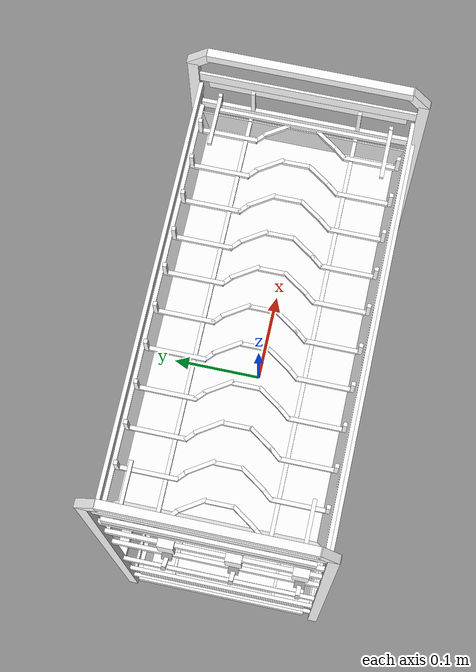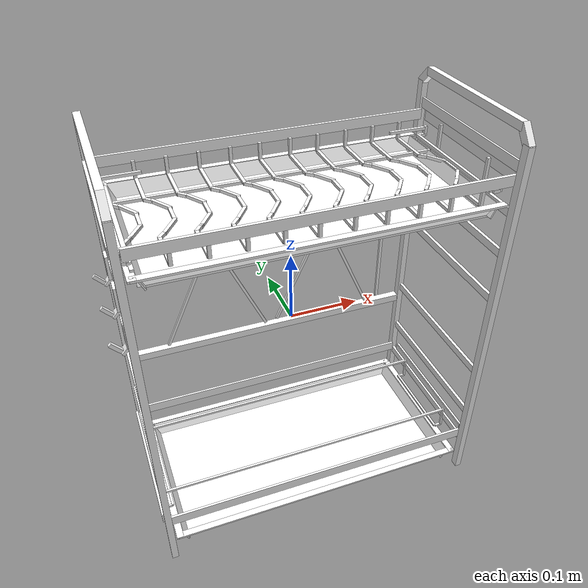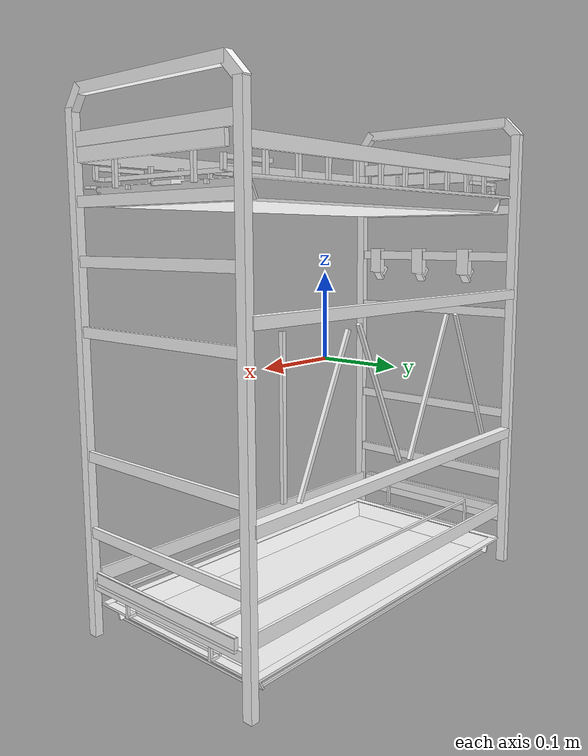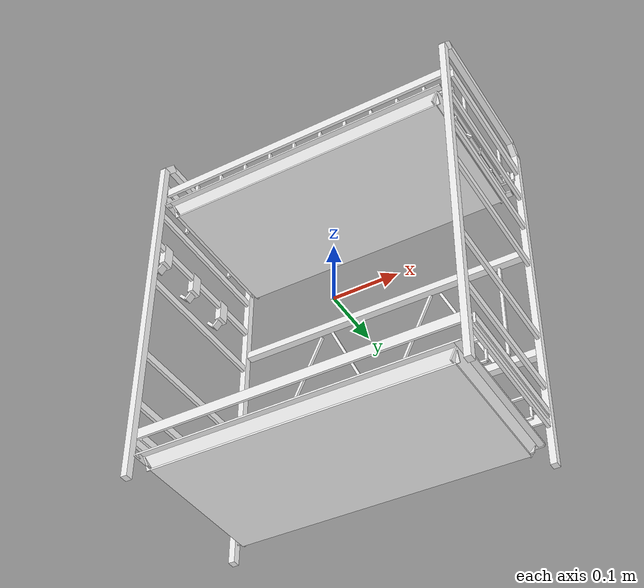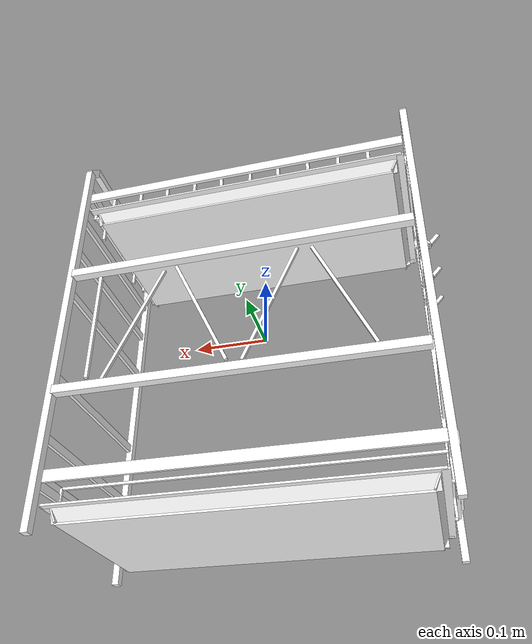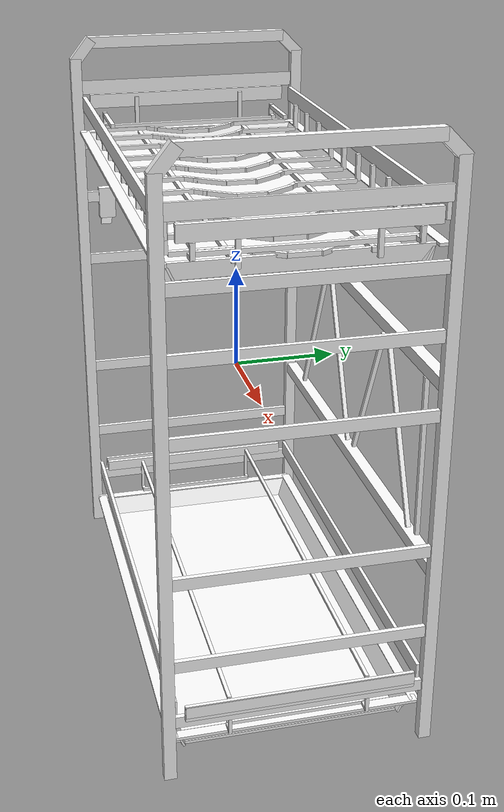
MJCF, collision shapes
<?xml version='1.0' encoding='utf-8'?>
<mujoco model="model">
  <option timestep="0.002" gravity="0.0 0.0 -9.81" />
  <compiler angle="radian" />
  <asset>
    <mesh file="visual/DishRack029.obj" name="DishRack029_vis" />
    <texture file="visual/T_BC001.png" name="DishRack029_material" type="2d" />
    <material name="DishRack029_material" rgba="1 1 1 1.0" texture="DishRack029_material" shininess="0.5" specular="0.3103448502657381" />
  </asset>
  <default>
    <default class="visual">
      <geom conaffinity="0" contype="0" group="1" type="mesh" />
    </default>
    <default class="collision">
      <geom group="0" rgba="1 1 1 0.25" density="1.0" solref="0.004 1" solimp="0.998 0.998 0.001" />
    </default>
    <default class="spawn">
      <geom group="0" rgba="1 1 1 0.5" contype="0" conaffinity="0" />
      <site group="0" rgba="1 1 1 0.5" />
    </default>
    <default class="region">
      <geom group="1" conaffinity="0" contype="0" rgba="0 1 0 0" mass="0" />
    </default>
  </default>
  <worldbody>
    <body>
      <body name="object">
        <geom mesh="DishRack029_vis" type="mesh" solimp="0.998 0.998 0.001" solref="0.001 1" friction="0.95 0.3 0.1" class="visual" material="DishRack029_material" />
        <geom type="box" pos="0.02023797 -0.00036031 0.19153175" size="0.002089031971991062 0.014431942254304886 0.002089031971991062" quat="1.0 0.0 0.0 0.0" class="collision" />
        <geom type="box" pos="0.01301253 0.02687440 0.19153175" size="0.0020890317391604185 0.016449270769953728 0.002089031971991062" quat="0.958610475063324 0.0 0.0 0.284720778465271" class="collision" />
        <geom type="box" pos="-0.00369886 0.07545906 0.19153175" size="0.002253699116408825 0.03013462945818901 0.002089031971991062" quat="1.0 0.0 0.0 0.0" class="collision" />
        <geom type="box" pos="0.01203822 -0.02724359 0.19153175" size="0.0020890317391604185 0.016449270769953728 0.002089031971991062" quat="0.9557548761367798 0.0 -0.0 -0.2941642999649048" class="collision" />
        <geom type="box" pos="0.00004160 -0.04367439 0.19153175" size="0.0020890317391604185 0.008003851398825645 0.002089031971991062" quat="0.9415494203567505 0.0 -0.0 -0.3368748426437378" class="collision" />
        <geom type="box" pos="-0.00418011 -0.07630337 0.19153175" size="0.0022805016487836838 0.027573665603995323 0.002088984241709113" quat="1.0 0.0 0.0 0.0" class="collision" />
        <geom type="box" pos="0.00000543 0.04327532 0.19153175" size="0.0020890317391604185 0.0066980645060539246 0.002089031971991062" quat="0.91725093126297 0.0 0.0 0.3983099162578583" class="collision" />
        <geom type="box" pos="-0.00421236 -0.10603266 0.20382532" size="0.002176405396312475 0.0020889611914753914 0.012602142989635468" quat="1.0 0.0 0.0 0.0" class="collision" />
        <geom type="box" pos="-0.00421236 0.10676773 0.20382532" size="0.002176406094804406 0.0020889616571366787 0.012602145783603191" quat="1.0 0.0 0.0 0.0" class="collision" />
        <geom type="box" pos="-0.02071365 -0.00036031 0.19181648" size="0.002089031971991062 0.014431917108595371 0.002089031971991062" quat="1.0 0.0 0.0 0.0" class="collision" />
        <geom type="box" pos="-0.02793910 0.02687440 0.19181648" size="0.0020890317391604185 0.016449270769953728 0.002089031971991062" quat="0.958610475063324 0.0 0.0 0.284720778465271" class="collision" />
        <geom type="box" pos="-0.04465048 0.07545906 0.19181648" size="0.002253699116408825 0.030134575441479683 0.002089031971991062" quat="1.0 0.0 0.0 0.0" class="collision" />
        <geom type="box" pos="-0.02891341 -0.02724359 0.19181648" size="0.0020890317391604185 0.016449270769953728 0.002089031971991062" quat="0.9557548761367798 0.0 -0.0 -0.2941642999649048" class="collision" />
        <geom type="box" pos="-0.04091003 -0.04367439 0.19181648" size="0.0020890317391604185 0.008003851398825645 0.002089031971991062" quat="0.9415494203567505 0.0 -0.0 -0.3368748426437378" class="collision" />
        <geom type="box" pos="-0.04513174 -0.07630337 0.19181648" size="0.0022805053740739822 0.027573714032769203 0.0020889861043542624" quat="1.0 0.0 0.0 0.0" class="collision" />
        <geom type="box" pos="-0.04094619 0.04327532 0.19181648" size="0.0020890317391604185 0.0066980645060539246 0.002089031971991062" quat="0.91725093126297 0.0 0.0 0.3983099162578583" class="collision" />
        <geom type="box" pos="-0.04516399 -0.10603266 0.20411006" size="0.0021764091216027737 0.0020889639854431152 0.012602157890796661" quat="1.0 0.0 0.0 0.0" class="collision" />
        <geom type="box" pos="-0.04516399 0.10676773 0.20411006" size="0.0021764098200947046 0.0020889644511044025 0.012602160684764385" quat="1.0 0.0 0.0 0.0" class="collision" />
        <geom type="box" pos="-0.06324033 -0.00036031 0.19211215" size="0.002089031971991062 0.014431891031563282 0.002089031971991062" quat="1.0 0.0 0.0 0.0" class="collision" />
        <geom type="box" pos="-0.07046578 0.02687440 0.19211215" size="0.0020890317391604185 0.016449270769953728 0.002089031971991062" quat="0.958610475063324 0.0 0.0 0.284720778465271" class="collision" />
        <geom type="box" pos="-0.08717716 0.07545906 0.19211215" size="0.002253699116408825 0.030134521424770355 0.002089031971991062" quat="1.0 0.0 0.0 0.0" class="collision" />
        <geom type="box" pos="-0.07144008 -0.02724359 0.19211215" size="0.0020890317391604185 0.016449270769953728 0.002089031971991062" quat="0.9557548761367798 0.0 -0.0 -0.2941642999649048" class="collision" />
        <geom type="box" pos="-0.08343671 -0.04367439 0.19211215" size="0.0020890317391604185 0.008003851398825645 0.002089031971991062" quat="0.9415494203567505 0.0 -0.0 -0.3368748426437378" class="collision" />
        <geom type="box" pos="-0.08765842 -0.07630337 0.19211215" size="0.0022805090993642807 0.027573764324188232 0.0020889879669994116" quat="1.0 0.0 0.0 0.0" class="collision" />
        <geom type="box" pos="-0.08347287 0.04327532 0.19211215" size="0.0020890317391604185 0.0066980645060539246 0.002089031971991062" quat="0.91725093126297 0.0 0.0 0.3983099162578583" class="collision" />
        <geom type="box" pos="-0.08769066 -0.10603266 0.20440573" size="0.002176412846893072 0.002088966779410839 0.012602172791957855" quat="1.0 0.0 0.0 0.0" class="collision" />
        <geom type="box" pos="-0.08769066 0.10676773 0.20440573" size="0.002176413545385003 0.0020889672450721264 0.012602175585925579" quat="1.0 0.0 0.0 0.0" class="collision" />
        <geom type="box" pos="-0.10596390 -0.00036031 0.19240919" size="0.002089031971991062 0.014431864954531193 0.002089031971991062" quat="1.0 0.0 0.0 0.0" class="collision" />
        <geom type="box" pos="-0.11318934 0.02687440 0.19240919" size="0.0020890317391604185 0.016449270769953728 0.002089031971991062" quat="0.958610475063324 0.0 0.0 0.284720778465271" class="collision" />
        <geom type="box" pos="-0.12990073 0.07545906 0.19240919" size="0.002253699116408825 0.030134467408061028 0.002089031971991062" quat="1.0 0.0 0.0 0.0" class="collision" />
        <geom type="box" pos="-0.11416365 -0.02724359 0.19240919" size="0.0020890317391604185 0.016449270769953728 0.002089031971991062" quat="0.9557548761367798 0.0 -0.0 -0.2941642999649048" class="collision" />
        <geom type="box" pos="-0.12616027 -0.04367439 0.19240919" size="0.0020890317391604185 0.008003851398825645 0.002089031971991062" quat="0.9415494203567505 0.0 -0.0 -0.3368748426437378" class="collision" />
        <geom type="box" pos="-0.13038198 -0.07630337 0.19240919" size="0.002280512824654579 0.027573812752962112 0.002088989829644561" quat="1.0 0.0 0.0 0.0" class="collision" />
        <geom type="box" pos="-0.12619643 0.04327532 0.19240919" size="0.0020890317391604185 0.0066980645060539246 0.002089031971991062" quat="0.91725093126297 0.0 0.0 0.3983099162578583" class="collision" />
        <geom type="box" pos="-0.13041423 -0.10603266 0.20470276" size="0.0021764165721833706 0.002088969573378563 0.012602187693119049" quat="1.0 0.0 0.0 0.0" class="collision" />
        <geom type="box" pos="-0.13041423 0.10676773 0.20470276" size="0.0021764172706753016 0.0020889700390398502 0.012602190487086773" quat="1.0 0.0 0.0 0.0" class="collision" />
        <geom type="box" pos="-0.14770305 -0.00036031 0.19269937" size="0.002089031971991062 0.014431839808821678 0.002089031971991062" quat="1.0 0.0 0.0 0.0" class="collision" />
        <geom type="box" pos="-0.15492850 0.02687440 0.19269937" size="0.0020890317391604185 0.016449270769953728 0.002089031971991062" quat="0.958610475063324 0.0 0.0 0.284720778465271" class="collision" />
        <geom type="box" pos="-0.17163989 0.07545906 0.19269937" size="0.002253699116408825 0.0301344133913517 0.002089031971991062" quat="1.0 0.0 0.0 0.0" class="collision" />
        <geom type="box" pos="-0.15590280 -0.02724359 0.19269937" size="0.0020890317391604185 0.016449270769953728 0.002089031971991062" quat="0.9557548761367798 0.0 -0.0 -0.2941642999649048" class="collision" />
        <geom type="box" pos="-0.16789943 -0.04367439 0.19269937" size="0.0020890317391604185 0.008003851398825645 0.002089031971991062" quat="0.9415494203567505 0.0 -0.0 -0.3368748426437378" class="collision" />
        <geom type="box" pos="-0.17212113 -0.07630337 0.19269937" size="0.0022805167827755213 0.02757386304438114 0.00208899169228971" quat="1.0 0.0 0.0 0.0" class="collision" />
        <geom type="box" pos="-0.16793559 0.04327532 0.19269937" size="0.0020890317391604185 0.0066980645060539246 0.002089031971991062" quat="0.91725093126297 0.0 0.0 0.3983099162578583" class="collision" />
        <geom type="box" pos="-0.17215338 -0.10603266 0.20499295" size="0.002176420297473669 0.0020889723673462868 0.012602202594280243" quat="1.0 0.0 0.0 0.0" class="collision" />
        <geom type="box" pos="-0.17215338 0.10676773 0.20499295" size="0.0021764209959656 0.002088972833007574 0.012602205388247967" quat="1.0 0.0 0.0 0.0" class="collision" />
        <geom type="box" pos="0.06315838 -0.00036031 0.19123334" size="0.002089031971991062 0.014431813731789589 0.002089031971991062" quat="1.0 0.0 0.0 0.0" class="collision" />
        <geom type="box" pos="0.05593293 0.02687440 0.19123334" size="0.0020890317391604185 0.016449270769953728 0.002089031971991062" quat="0.958610475063324 0.0 0.0 0.284720778465271" class="collision" />
        <geom type="box" pos="0.03922154 0.07545906 0.19123334" size="0.002253699116408825 0.030134359374642372 0.002089031971991062" quat="1.0 0.0 0.0 0.0" class="collision" />
        <geom type="box" pos="0.05495863 -0.02724359 0.19123334" size="0.0020890317391604185 0.016449270769953728 0.002089031971991062" quat="0.9557548761367798 0.0 -0.0 -0.2941642999649048" class="collision" />
        <geom type="box" pos="0.04296200 -0.04367439 0.19123334" size="0.0020890317391604185 0.008003851398825645 0.002089031971991062" quat="0.9415494203567505 0.0 -0.0 -0.3368748426437378" class="collision" />
        <geom type="box" pos="0.03874030 -0.07630337 0.19123334" size="0.0022805205080658197 0.02757391147315502 0.0020889935549348593" quat="1.0 0.0 0.0 0.0" class="collision" />
        <geom type="box" pos="0.04292584 0.04327532 0.19123334" size="0.0020890317391604185 0.0066980645060539246 0.002089031971991062" quat="0.91725093126297 0.0 0.0 0.3983099162578583" class="collision" />
        <geom type="box" pos="0.03870805 -0.10603266 0.20352691" size="0.0021764240227639675 0.0020889751613140106 0.012602217495441437" quat="1.0 0.0 0.0 0.0" class="collision" />
        <geom type="box" pos="0.03870805 0.10676773 0.20352691" size="0.0021764247212558985 0.002088975626975298 0.01260222028940916" quat="1.0 0.0 0.0 0.0" class="collision" />
        <geom type="box" pos="0.10351935 -0.00036031 0.19095272" size="0.002089031971991062 0.0144317876547575 0.002089031971991062" quat="1.0 0.0 0.0 0.0" class="collision" />
        <geom type="box" pos="0.09629390 0.02687440 0.19095272" size="0.0020890317391604185 0.016449270769953728 0.002089031971991062" quat="0.958610475063324 0.0 0.0 0.284720778465271" class="collision" />
        <geom type="box" pos="0.07958252 0.07545906 0.19095272" size="0.002253699116408825 0.030134305357933044 0.002089031971991062" quat="1.0 0.0 0.0 0.0" class="collision" />
        <geom type="box" pos="0.09531960 -0.02724359 0.19095272" size="0.0020890317391604185 0.016449270769953728 0.002089031971991062" quat="0.9557548761367798 0.0 -0.0 -0.2941642999649048" class="collision" />
        <geom type="box" pos="0.08332298 -0.04367439 0.19095272" size="0.0020890317391604185 0.008003851398825645 0.002089031971991062" quat="0.9415494203567505 0.0 -0.0 -0.3368748426437378" class="collision" />
        <geom type="box" pos="0.07910127 -0.07630337 0.19095272" size="0.002280524233356118 0.02757396176457405 0.0020889954175800085" quat="1.0 0.0 0.0 0.0" class="collision" />
        <geom type="box" pos="0.08328681 0.04327532 0.19095272" size="0.0020890317391604185 0.0066980645060539246 0.002089031971991062" quat="0.91725093126297 0.0 0.0 0.3983099162578583" class="collision" />
        <geom type="box" pos="0.07906902 -0.10603266 0.20324630" size="0.002176427748054266 0.0020889779552817345 0.01260223239660263" quat="1.0 0.0 0.0 0.0" class="collision" />
        <geom type="box" pos="0.07906902 0.10676773 0.20324630" size="0.002176428446546197 0.0020889786537736654 0.012602235190570354" quat="1.0 0.0 0.0 0.0" class="collision" />
        <geom type="box" pos="0.14561290 -0.00036031 0.19066006" size="0.002089031971991062 0.01443176157772541 0.002089031971991062" quat="1.0 0.0 0.0 0.0" class="collision" />
        <geom type="box" pos="0.13838745 0.02687440 0.19066006" size="0.0020890317391604185 0.016449270769953728 0.002089031971991062" quat="0.958610475063324 0.0 0.0 0.284720778465271" class="collision" />
        <geom type="box" pos="0.12167606 0.07545906 0.19066006" size="0.002253699116408825 0.030134251341223717 0.002089031971991062" quat="1.0 0.0 0.0 0.0" class="collision" />
        <geom type="box" pos="0.13741315 -0.02724359 0.19066006" size="0.0020890317391604185 0.016449270769953728 0.002089031971991062" quat="0.9557548761367798 0.0 -0.0 -0.2941642999649048" class="collision" />
        <geom type="box" pos="0.12541652 -0.04367439 0.19066006" size="0.0020890317391604185 0.008003851398825645 0.002089031971991062" quat="0.9415494203567505 0.0 -0.0 -0.3368748426437378" class="collision" />
        <geom type="box" pos="0.12119481 -0.07630337 0.19066006" size="0.0022805279586464167 0.02757401019334793 0.0020889972802251577" quat="1.0 0.0 0.0 0.0" class="collision" />
        <geom type="box" pos="0.12538036 0.04327532 0.19066006" size="0.0020890317391604185 0.0066980645060539246 0.002089031971991062" quat="0.91725093126297 0.0 0.0 0.3983099162578583" class="collision" />
        <geom type="box" pos="0.12116257 -0.10603266 0.20295364" size="0.0021764314733445644 0.0020889807492494583 0.012602247297763824" quat="1.0 0.0 0.0 0.0" class="collision" />
        <geom type="box" pos="0.12116257 0.10676773 0.20295364" size="0.0021764321718364954 0.0020889814477413893 0.012602250091731548" quat="1.0 0.0 0.0 0.0" class="collision" />
        <geom type="box" pos="0.18689922 -0.00036031 0.19037300" size="0.002089031971991062 0.014431736432015896 0.002089031971991062" quat="1.0 0.0 0.0 0.0" class="collision" />
        <geom type="box" pos="0.17967377 0.02687440 0.19037300" size="0.0020890317391604185 0.016449270769953728 0.002089031971991062" quat="0.958610475063324 0.0 0.0 0.284720778465271" class="collision" />
        <geom type="box" pos="0.16296238 0.07545906 0.19037300" size="0.002253699116408825 0.03013419732451439 0.002089031971991062" quat="1.0 0.0 0.0 0.0" class="collision" />
        <geom type="box" pos="0.17869947 -0.02724359 0.19037300" size="0.0020890317391604185 0.016449270769953728 0.002089031971991062" quat="0.9557548761367798 0.0 -0.0 -0.2941642999649048" class="collision" />
        <geom type="box" pos="0.16670284 -0.04367439 0.19037300" size="0.0020890317391604185 0.008003851398825645 0.002089031971991062" quat="0.9415494203567505 0.0 -0.0 -0.3368748426437378" class="collision" />
        <geom type="box" pos="0.16248113 -0.07630337 0.19037300" size="0.002280531683936715 0.02757405862212181 0.002088999142870307" quat="1.0 0.0 0.0 0.0" class="collision" />
        <geom type="box" pos="0.16666668 0.04327532 0.19037300" size="0.0020890317391604185 0.0066980645060539246 0.002089031971991062" quat="0.91725093126297 0.0 0.0 0.3983099162578583" class="collision" />
        <geom type="box" pos="0.16244889 -0.10603266 0.20266658" size="0.002176435198634863 0.002088983543217182 0.012602262198925018" quat="1.0 0.0 0.0 0.0" class="collision" />
        <geom type="box" pos="0.16244889 0.10676773 0.20266658" size="0.002176435897126794 0.002088984241709113 0.012602264992892742" quat="1.0 0.0 0.0 0.0" class="collision" />
        <geom type="box" pos="0.22903213 -0.00036031 0.19008008" size="0.002089031971991062 0.014431710354983807 0.002089031971991062" quat="1.0 0.0 0.0 0.0" class="collision" />
        <geom type="box" pos="0.22180668 0.02687440 0.19008008" size="0.0020890317391604185 0.016449270769953728 0.002089031971991062" quat="0.958610475063324 0.0 0.0 0.284720778465271" class="collision" />
        <geom type="box" pos="0.20509530 0.07545906 0.19008008" size="0.002253699116408825 0.03013414330780506 0.002089031971991062" quat="1.0 0.0 0.0 0.0" class="collision" />
        <geom type="box" pos="0.22083238 -0.02724359 0.19008008" size="0.0020890317391604185 0.016449270769953728 0.002089031971991062" quat="0.9557548761367798 0.0 -0.0 -0.2941642999649048" class="collision" />
        <geom type="box" pos="0.20883576 -0.04367439 0.19008008" size="0.0020890317391604185 0.008003851398825645 0.002089031971991062" quat="0.9415494203567505 0.0 -0.0 -0.3368748426437378" class="collision" />
        <geom type="box" pos="0.20461405 -0.07630337 0.19008008" size="0.0022805354092270136 0.02757410891354084 0.002089001005515456" quat="1.0 0.0 0.0 0.0" class="collision" />
        <geom type="box" pos="0.20879959 0.04327532 0.19008008" size="0.0020890317391604185 0.0066980645060539246 0.002089031971991062" quat="0.91725093126297 0.0 0.0 0.3983099162578583" class="collision" />
        <geom type="box" pos="0.20458180 -0.10603266 0.20237365" size="0.0021764389239251614 0.002088986337184906 0.012602277100086212" quat="1.0 0.0 0.0 0.0" class="collision" />
        <geom type="box" pos="0.20458180 0.10676773 0.20237365" size="0.0021764396224170923 0.002088987035676837 0.012602279894053936" quat="1.0 0.0 0.0 0.0" class="collision" />
        <geom type="box" pos="0.21059730 -0.09190657 0.20693919" size="0.027561062946915627 0.002095217118039727 0.0020890021696686745" quat="1.0 0.0 0.0 0.0" class="collision" />
        <geom type="box" pos="0.24011767 -0.09166373 0.20263934" size="0.0020890026353299618 0.002090571913868189 0.007022853475064039" quat="1.0 0.0 0.0 0.0" class="collision" />
        <geom type="box" pos="0.23523656 -0.09177761 0.19682845" size="0.0047389911487698555 0.0020900380332022905 0.0020890336018055677" quat="1.0 0.0 0.0 0.0" class="collision" />
        <geom type="box" pos="0.22919651 0.00196810 0.19682798" size="0.0021099341101944447 0.09225110709667206 0.0020890403538942337" quat="1.0 0.0 0.0 0.0" class="collision" />
        <geom type="box" pos="0.21063909 0.09279377 0.20693916" size="0.027561087161302567 0.0020952196791768074 0.0020890035666525364" quat="1.0 0.0 0.0 0.0" class="collision" />
        <geom type="box" pos="0.24015947 0.09303661 0.20263931" size="0.0020890040323138237 0.002090574475005269 0.007022859062999487" quat="1.0 0.0 0.0 0.0" class="collision" />
        <geom type="box" pos="0.23527836 0.09292273 0.19682843" size="0.0047389911487698555 0.0020900412928313017 0.0020890336018055677" quat="1.0 0.0 0.0 0.0" class="collision" />
        <geom type="box" pos="-0.19278113 0.09313459 0.20693907" size="0.02756110578775406 0.002095217350870371 0.0020890047308057547" quat="1.0 0.0 0.0 0.0" class="collision" />
        <geom type="box" pos="-0.22230151 0.09289175 0.20263922" size="0.0020890061277896166 0.002090576570481062 0.007022864185273647" quat="1.0 0.0 0.0 0.0" class="collision" />
        <geom type="box" pos="-0.21742039 0.09300563 0.19682834" size="0.004738992545753717 0.0020900450181216 0.0020890352316200733" quat="1.0 0.0 0.0 0.0" class="collision" />
        <geom type="box" pos="-0.19282296 -0.09156575 0.20693904" size="0.027561122551560402 0.00209521921351552 0.002089005894958973" quat="1.0 0.0 0.0 0.0" class="collision" />
        <geom type="box" pos="-0.22234334 -0.09180859 0.20263919" size="0.002089007291942835 0.002090578433126211 0.00702286884188652" quat="1.0 0.0 0.0 0.0" class="collision" />
        <geom type="box" pos="-0.21746222 -0.09169471 0.19682831" size="0.004738992545753717 0.0020900475792586803 0.0020890352316200733" quat="1.0 0.0 0.0 0.0" class="collision" />
        <geom type="box" pos="-0.22416614 -0.05658259 0.20562202" size="0.0020890096202492714 0.0020932622719556093 0.01868651993572712" quat="1.0 0.0 0.0 0.0" class="collision" />
        <geom type="box" pos="-0.18735739 -0.00036031 0.19269687" size="0.002089031971991062 0.014431612566113472 0.002089031971991062" quat="1.0 0.0 0.0 0.0" class="collision" />
        <geom type="box" pos="-0.19458285 0.02687440 0.19269687" size="0.0020890317391604185 0.016449270769953728 0.002089031971991062" quat="0.958610475063324 0.0 0.0 0.284720778465271" class="collision" />
        <geom type="box" pos="-0.21129423 0.07545906 0.19269687" size="0.002253699116408825 0.030133938416838646 0.002089031971991062" quat="1.0 0.0 0.0 0.0" class="collision" />
        <geom type="box" pos="-0.19555714 -0.02724359 0.19269687" size="0.0020890317391604185 0.016449270769953728 0.002089031971991062" quat="0.9557548761367798 0.0 -0.0 -0.2941642999649048" class="collision" />
        <geom type="box" pos="-0.20755377 -0.04367439 0.19269687" size="0.0020890317391604185 0.008003851398825645 0.002089031971991062" quat="0.9415494203567505 0.0 -0.0 -0.3368748426437378" class="collision" />
        <geom type="box" pos="-0.21177548 -0.07630337 0.19269687" size="0.0022805496118962765 0.027574295178055763 0.002089007990434766" quat="1.0 0.0 0.0 0.0" class="collision" />
        <geom type="box" pos="-0.20758993 0.04327532 0.19269687" size="0.0020890317391604185 0.0066980645060539246 0.002089031971991062" quat="0.91725093126297 0.0 0.0 0.3983099162578583" class="collision" />
        <geom type="box" pos="-0.21292933 -0.00166453 0.19573316" size="0.0025932316202670336 0.09223329275846481 0.002089031971991062" quat="1.0 0.0 0.0 0.0" class="collision" />
        <geom type="box" pos="-0.22416614 0.05765202 0.20564789" size="0.0020890114828944206 0.0020932622719556093 0.01868651993572712" quat="1.0 0.0 0.0 0.0" class="collision" />
        <geom type="box" pos="0.00982430 -0.05662808 0.18864101" size="0.21960632503032684 0.002138763200491667 0.002089117653667927" quat="1.0 0.0 0.0 0.0" class="collision" />
        <geom type="box" pos="0.00985017 0.05760652 0.18864101" size="0.21960636973381042 0.002138763200491667 0.002089117653667927" quat="1.0 0.0 0.0 0.0" class="collision" />
        <geom type="box" pos="0.24220540 -0.05658259 0.20562199" size="0.002089012647047639 0.0020932622719556093 0.01868651993572712" quat="1.0 0.0 0.0 0.0" class="collision" />
        <geom type="box" pos="0.24220540 0.05765202 0.20564786" size="0.002089013112708926 0.0020932622719556093 0.01868651993572712" quat="1.0 0.0 0.0 0.0" class="collision" />
        <geom type="box" pos="0.01065616 0.11344678 0.22025025" size="0.2311844527721405 0.0021413846407085657 0.007252788636833429" quat="1.0 0.0 0.0 0.0" class="collision" />
        <geom type="box" pos="0.01060487 -0.11299344 0.22025025" size="0.2311844527721405 0.0021413846407085657 0.007252788636833429" quat="1.0 0.0 0.0 0.0" class="collision" />
        <geom type="box" pos="0.24807983 -0.00000223 0.22025019" size="0.00244157575070858 0.1062428280711174 0.007252662908285856" quat="1.0 0.0 0.0 0.0" class="collision" />
        <geom type="box" pos="-0.23033426 0.00010619 0.22025025" size="0.0021131145767867565 0.10624274611473083 0.007252662442624569" quat="1.0 0.0 0.0 0.0" class="collision" />
        <geom type="box" pos="0.24455055 -0.00000148 0.23614341" size="0.0014591086655855179 0.11518851667642593 0.007252668030560017" quat="1.0 0.0 0.0 0.0" class="collision" />
        <geom type="box" pos="-0.22670006 0.00010535 0.23614335" size="0.0012644082307815552 0.11519002914428711 0.007252771407365799" quat="1.0 0.0 0.0 0.0" class="collision" />
        <geom type="box" pos="0.24454926 -0.00084757 0.28295904" size="0.0046019600704312325 0.10640924423933029 0.005674049723893404" quat="1.0 0.0 0.0 0.0" class="collision" />
        <geom type="box" pos="0.24462492 0.12076207 -0.01121345" size="0.0046408032067120075 0.005674127489328384 0.2777716815471649" quat="1.0 0.0 0.0 0.0" class="collision" />
        <geom type="box" pos="0.24457343 0.11272859 0.27390909" size="0.004577839747071266 0.015347612090408802 0.005673982203006744" quat="0.3826832175254822 0.9238796234130859 -0.00010473640577401966 4.329369039623998e-05" class="collision" />
        <geom type="box" pos="0.24457844 -0.11249917 0.27397931" size="0.004577839747071266 0.015347612090408802 0.005673982203006744" quat="0.4345923960208893 -0.9006272554397583 0.00010223130084341392 4.927140616928227e-05" class="collision" />
        <geom type="box" pos="0.24463022 -0.12032763 -0.01121357" size="0.0046408032067120075 0.005674127489328384 0.277771532535553" quat="1.0 0.0 0.0 0.0" class="collision" />
        <geom type="box" pos="0.24519532 0.00062122 0.17556867" size="0.002294865669682622 0.11604668945074081 0.005674153100699186" quat="1.0 0.0 0.0 0.0" class="collision" />
        <geom type="box" pos="0.24519697 0.00062125 0.11632442" size="0.0022948647383600473 0.11604665964841843 0.005674151238054037" quat="1.0 0.0 0.0 0.0" class="collision" />
        <geom type="box" pos="0.24519898 0.00062129 0.04451326" size="0.0022948640398681164 0.11604662984609604 0.0056741489097476006" quat="1.0 0.0 0.0 0.0" class="collision" />
        <geom type="box" pos="0.24520265 0.00062137 -0.08676949" size="0.0022948631085455418 0.11604660004377365 0.005674147047102451" quat="1.0 0.0 0.0 0.0" class="collision" />
        <geom type="box" pos="0.24520497 0.00062141 -0.17035428" size="0.002294862410053611 0.11604657024145126 0.005674145184457302" quat="1.0 0.0 0.0 0.0" class="collision" />
        <geom type="box" pos="0.24807485 0.00062082 -0.21835029" size="0.0022925606463104486 0.10604840517044067 0.005673972424119711" quat="1.0 0.0 0.0 0.0" class="collision" />
        <geom type="box" pos="0.24456071 0.00062159 -0.22960567" size="0.002294905949383974 0.11639619618654251 0.005674055777490139" quat="1.0 0.0 0.0 0.0" class="collision" />
        <geom type="box" pos="-0.22698243 -0.00078093 0.28304279" size="0.0046019600704312325 0.10640951991081238 0.005674049723893404" quat="1.0 0.0 0.0 0.0" class="collision" />
        <geom type="box" pos="-0.22690677 0.12082871 -0.01112971" size="0.0046408032067120075 0.005674127489328384 0.27777037024497986" quat="1.0 0.0 0.0 0.0" class="collision" />
        <geom type="box" pos="-0.22695826 0.11279522 0.27399284" size="0.004577839747071266 0.015347612090408802 0.005673982203006744" quat="0.3826832175254822 0.9238796234130859 -0.00010473640577401966 4.329369039623998e-05" class="collision" />
        <geom type="box" pos="-0.22695325 -0.11243253 0.27406305" size="0.004577839747071266 0.015347612090408802 0.005673982203006744" quat="0.4345923960208893 -0.9006272554397583 0.00010223130084341392 4.927140616928227e-05" class="collision" />
        <geom type="box" pos="-0.22690147 -0.12026099 -0.01112983" size="0.0046408032067120075 0.005674127489328384 0.2777702510356903" quat="1.0 0.0 0.0 0.0" class="collision" />
        <geom type="box" pos="-0.22633637 0.00068785 0.17565241" size="0.002294857520610094 0.11604639142751694 0.005674132611602545" quat="1.0 0.0 0.0 0.0" class="collision" />
        <geom type="box" pos="-0.22633472 0.00068789 0.11640817" size="0.0022948565892875195 0.11604636162519455 0.0056741307489573956" quat="1.0 0.0 0.0 0.0" class="collision" />
        <geom type="box" pos="-0.22633270 0.00068793 0.04459700" size="0.0022948558907955885 0.11604633182287216 0.005674128886312246" quat="1.0 0.0 0.0 0.0" class="collision" />
        <geom type="box" pos="-0.22632904 0.00068800 -0.08668575" size="0.002294854959473014 0.11604630202054977 0.00567412655800581" quat="1.0 0.0 0.0 0.0" class="collision" />
        <geom type="box" pos="-0.22632671 0.00068805 -0.17027052" size="0.002294854260981083 0.11604627221822739 0.0056741246953606606" quat="1.0 0.0 0.0 0.0" class="collision" />
        <geom type="box" pos="-0.22345684 0.00068746 -0.21826654" size="0.0022925606463104486 0.10604840517044067 0.005673982668668032" quat="1.0 0.0 0.0 0.0" class="collision" />
        <geom type="box" pos="-0.22697098 0.00068822 -0.22952193" size="0.002294905949383974 0.11639589816331863 0.005674055777490139" quat="1.0 0.0 0.0 0.0" class="collision" />
        <geom type="box" pos="0.01065662 0.12212600 0.06966430" size="0.23118533194065094 0.005992428865283728 0.00588851235806942" quat="1.0 0.0 0.0 0.0" class="collision" />
        <geom type="box" pos="0.01065656 0.12212599 -0.11079173" size="0.23118533194065094 0.005992430727928877 0.005888514686375856" quat="1.0 0.0 0.0 0.0" class="collision" />
        <geom type="box" pos="-0.22762218 0.04993927 0.10894147" size="0.004671305883675814 0.008764751255512238 0.01679389923810959" quat="1.0 0.0 0.0 0.0" class="collision" />
        <geom type="box" pos="-0.23314984 0.04932425 0.08713025" size="0.0018108938820660114 0.00567662063986063 0.006513148080557585" quat="3.990478944615461e-05 0.9350299835205078 -0.00010633260535541922 -0.3545686602592468" class="collision" />
        <geom type="box" pos="-0.24377894 0.04932426 0.09127292" size="0.0024499641731381416 0.0023410001304000616 0.008811659179627895" quat="4.182730117463507e-05 -0.9320811033248901 0.00010587568976916373 -0.3622496724128723" class="collision" />
        <geom type="box" pos="-0.22763419 -0.02195140 0.10893035" size="0.004671305883675814 0.008764751255512238 0.01679389923810959" quat="1.0 0.0 0.0 0.0" class="collision" />
        <geom type="box" pos="-0.23316185 -0.02256642 0.08711913" size="0.0018108938820660114 0.00567662063986063 0.006513148080557585" quat="3.990478944615461e-05 0.9350299835205078 -0.00010633260535541922 -0.3545686602592468" class="collision" />
        <geom type="box" pos="-0.24379095 -0.02256641 0.09126180" size="0.0024499641731381416 0.0023410001304000616 0.008811659179627895" quat="4.182730117463507e-05 -0.9320811033248901 0.00010587568976916373 -0.3622496724128723" class="collision" />
        <geom type="box" pos="-0.22764606 -0.09304258 0.10891935" size="0.004671305883675814 0.008764751255512238 0.01679389923810959" quat="1.0 0.0 0.0 0.0" class="collision" />
        <geom type="box" pos="-0.23317372 -0.09365759 0.08710814" size="0.0018108938820660114 0.00567662063986063 0.006513148080557585" quat="3.990478944615461e-05 0.9350299835205078 -0.00010633260535541922 -0.3545686602592468" class="collision" />
        <geom type="box" pos="-0.24380283 -0.09365759 0.09125081" size="0.0024499641731381416 0.0023410001304000616 0.008811659179627895" quat="4.182730117463507e-05 -0.9320811033248901 0.00010587568976916373 -0.3622496724128723" class="collision" />
        <geom type="box" pos="-0.12602979 0.12059755 -0.02411398" size="0.002089031971991062 0.08524610102176666 0.002089031971991062" quat="0.6905385255813599 0.6905385851860046 0.15217262506484985 -0.15217263996601105" class="collision" />
        <geom type="box" pos="-0.23180730 0.00036863 -0.21946509" size="0.0016728922491893172 0.10625168681144714 0.007787889800965786" quat="1.0 0.0 0.0 0.0" class="collision" />
        <geom type="box" pos="0.24855675 0.00025975 -0.21946511" size="0.0016728928312659264 0.10625168681144714 0.007787889800965786" quat="1.0 0.0 0.0 0.0" class="collision" />
        <geom type="box" pos="0.00821790 -0.11319254 -0.21946506" size="0.23195281624794006 0.0017014610348269343 0.007788009475916624" quat="1.0 0.0 0.0 0.0" class="collision" />
        <geom type="box" pos="0.00826940 0.11383911 -0.21946505" size="0.23195281624794006 0.0017014610348269343 0.007788009475916624" quat="1.0 0.0 0.0 0.0" class="collision" />
        <geom type="box" pos="-0.03626577 0.12059755 -0.02288997" size="0.002089031971991062 0.08524610102176666 0.002089031971991062" quat="0.6909614205360413 0.6909613609313965 -0.15024110674858093 0.15024109184741974" class="collision" />
        <geom type="box" pos="0.05499431 0.12059755 -0.02030587" size="0.002089031971991062 0.08524610102176666 0.002089031971991062" quat="0.6898707747459412 0.6898707747459412 0.15517190098762512 -0.1551719456911087" class="collision" />
        <geom type="box" pos="0.14312627 0.12059755 -0.02481037" size="0.002089031971991062 0.08524610102176666 0.002089031971991062" quat="0.6908100843429565 0.6908101439476013 -0.15093497931957245 0.15093500912189484" class="collision" />
        <geom type="box" pos="0.19984082 0.12059755 -0.01882610" size="0.002307935617864132 0.002089091809466481 0.07825104147195816" quat="1.0 0.0 0.0 0.0" class="collision" />
        <geom type="box" pos="0.00808853 -0.10686665 -0.26531536" size="0.0010000000474974513 0.21755285561084747 0.009999999776482582" quat="0.6903455853462219 0.1530459076166153 -0.1530458927154541 0.6903455257415771" class="collision" />
        <geom type="box" pos="0.00884533 0.00048584 -0.27486897" size="0.21178367733955383 0.10517136752605438 0.0013524276437237859" quat="1.0 0.0 0.0 0.0" class="collision" />
        <geom type="box" pos="0.00826940 0.06481365 -0.21699115" size="0.23195432126522064 0.0017016463680192828 0.0016491863643750548" quat="1.0 0.0 0.0 0.0" class="collision" />
        <geom type="box" pos="-0.22277350 0.06481365 -0.23460724" size="0.0016494153533130884 0.0016493801958858967 0.018195003271102905" quat="1.0 0.0 0.0 0.0" class="collision" />
        <geom type="box" pos="-0.21877102 0.06481365 -0.25141245" size="0.005000373814254999 0.0016501288628205657 0.001648992532864213" quat="1.0 0.0 0.0 0.0" class="collision" />
        <geom type="box" pos="0.23741666 0.06481365 -0.25141245" size="0.005000373814254999 0.0016501292120665312 0.0016489928821101785" quat="1.0 0.0 0.0 0.0" class="collision" />
        <geom type="box" pos="0.24206904 0.06481365 -0.23460724" size="0.0016494153533130884 0.0016493801958858967 0.018195003271102905" quat="1.0 0.0 0.0 0.0" class="collision" />
        <geom type="box" pos="0.24206904 -0.06400746 -0.23460724" size="0.0016494153533130884 0.0016493801958858967 0.018195003271102905" quat="1.0 0.0 0.0 0.0" class="collision" />
        <geom type="box" pos="0.23741666 -0.06400746 -0.25141245" size="0.005000373814254999 0.0016501301433891058 0.0016489941626787186" quat="1.0 0.0 0.0 0.0" class="collision" />
        <geom type="box" pos="-0.21877102 -0.06400746 -0.25141245" size="0.005000373814254999 0.0016501304926350713 0.0016489946283400059" quat="1.0 0.0 0.0 0.0" class="collision" />
        <geom type="box" pos="-0.22277350 -0.06400746 -0.23460724" size="0.0016494153533130884 0.0016493801958858967 0.018195003271102905" quat="1.0 0.0 0.0 0.0" class="collision" />
        <geom type="box" pos="0.00826940 -0.06400746 -0.21699115" size="0.23195365071296692 0.001701642177067697 0.0016491863643750548" quat="1.0 0.0 0.0 0.0" class="collision" />
        <geom type="box" pos="-0.21348555 -0.00019676 -0.25095012" size="0.00164899998344481 0.06499983370304108 0.001649052370339632" quat="1.0 0.0 0.0 0.0" class="collision" />
        <geom type="box" pos="0.23100056 0.00046693 -0.25095012" size="0.00164899998344481 0.06499984860420227 0.001649052370339632" quat="1.0 0.0 0.0 0.0" class="collision" />
        <geom type="box" pos="0.00845072 0.10650490 -0.26531536" size="0.0010000000474974513 0.21755285561084747 0.009999999776482582" quat="0.6903455257415771 -0.15304593741893768 0.15304593741893768 0.6903455257415771" class="collision" />
        <geom type="box" pos="0.22235088 -0.00103519 -0.26531536" size="0.0010000000474974513 0.11145981401205063 0.009999999776482582" quat="0.9762960076332092 0.0 0.2164396494626999 0.0" class="collision" />
        <geom type="box" pos="-0.20599986 -0.00103519 -0.26531536" size="0.0010000000474974513 0.11145981401205063 0.009999999776482582" quat="0.9762960076332092 0.0 -0.21643958985805511 0.0" class="collision" />
        <geom type="box" pos="-0.20599986 -0.00103519 0.18146789" size="0.0010000000474974513 0.11145981401205063 0.009999999776482582" quat="0.9762960076332092 0.0 -0.21643958985805511 0.0" class="collision" />
        <geom type="box" pos="0.22235088 -0.00103519 0.18146789" size="0.0010000000474974513 0.11145981401205063 0.009999999776482582" quat="0.9762960076332092 0.0 0.2164396494626999 0.0" class="collision" />
        <geom type="box" pos="0.00845072 0.10650490 0.18146789" size="0.0010000000474974513 0.21755285561084747 0.009999999776482582" quat="0.6903455257415771 -0.15304593741893768 0.15304593741893768 0.6903455257415771" class="collision" />
        <geom type="box" pos="0.00808853 -0.10686665 0.18146789" size="0.0010000000474974513 0.21755285561084747 0.009999999776482582" quat="0.6903455853462219 0.1530459076166153 -0.1530458927154541 0.6903455257415771" class="collision" />
        <geom type="box" pos="0.00884533 -0.11507729 -0.25645487" size="0.22576022148132324 0.00482900021597743 0.0013524276437237859" quat="1.0 0.0 0.0 0.0" class="collision" />
        <geom type="box" pos="0.00884533 0.11482398 -0.25645487" size="0.2257602959871292 0.00482900021597743 0.0013524276437237859" quat="1.0 0.0 0.0 0.0" class="collision" />
        <geom type="box" pos="0.23160957 -0.00133443 -0.25645487" size="0.00482901930809021 0.11825567483901978 0.0013524276437237859" quat="1.0 0.0 0.0 0.0" class="collision" />
        <geom type="box" pos="-0.21483685 -0.00133443 -0.25645487" size="0.00482901930809021 0.11825567483901978 0.0013524276437237859" quat="1.0 0.0 0.0 0.0" class="collision" />
        <geom type="box" pos="-0.21483685 -0.00133443 0.19032839" size="0.00482901930809021 0.11825567483901978 0.0013524276437237859" quat="1.0 0.0 0.0 0.0" class="collision" />
        <geom type="box" pos="0.00884533 0.11482398 0.19032839" size="0.2257605940103531 0.00482900021597743 0.0013524276437237859" quat="1.0 0.0 0.0 0.0" class="collision" />
        <geom type="box" pos="0.00884533 -0.11507729 0.19032839" size="0.22576066851615906 0.00482900021597743 0.0013524276437237859" quat="1.0 0.0 0.0 0.0" class="collision" />
        <geom type="box" pos="0.00884533 0.00048584 0.17191431" size="0.21178507804870605 0.10517136752605438 0.0013524276437237859" quat="1.0 0.0 0.0 0.0" class="collision" />
        <geom class="region" name="reg_int_1" type="box" pos="0.008275185000000004 0.0013150300000000018 0.28953506" size="0.217974695 0.08879512 0.09533745" />
        <geom class="region" name="reg_int_0" type="box" pos="0.00960686999999999 -0.006253855000000003 -0.021542550000000008" size="0.22975935 0.117219195 0.18930085000000002" />
        <geom class="region" name="reg_int_2" type="box" pos="0.008138645 0.0008906899999999995 -0.24960657000000003" size="0.199024545 0.09587083 0.02375474000000001" />
        <geom size="0.253246 0.13079739 0.292206925" pos="0.0 0.0 -0.0" name="reg_bbox" class="region" type="box" quat="1.0 0.0 0.0 0.0" />
        </body>
    </body>
  </worldbody>
  <actuator />
</mujoco>
